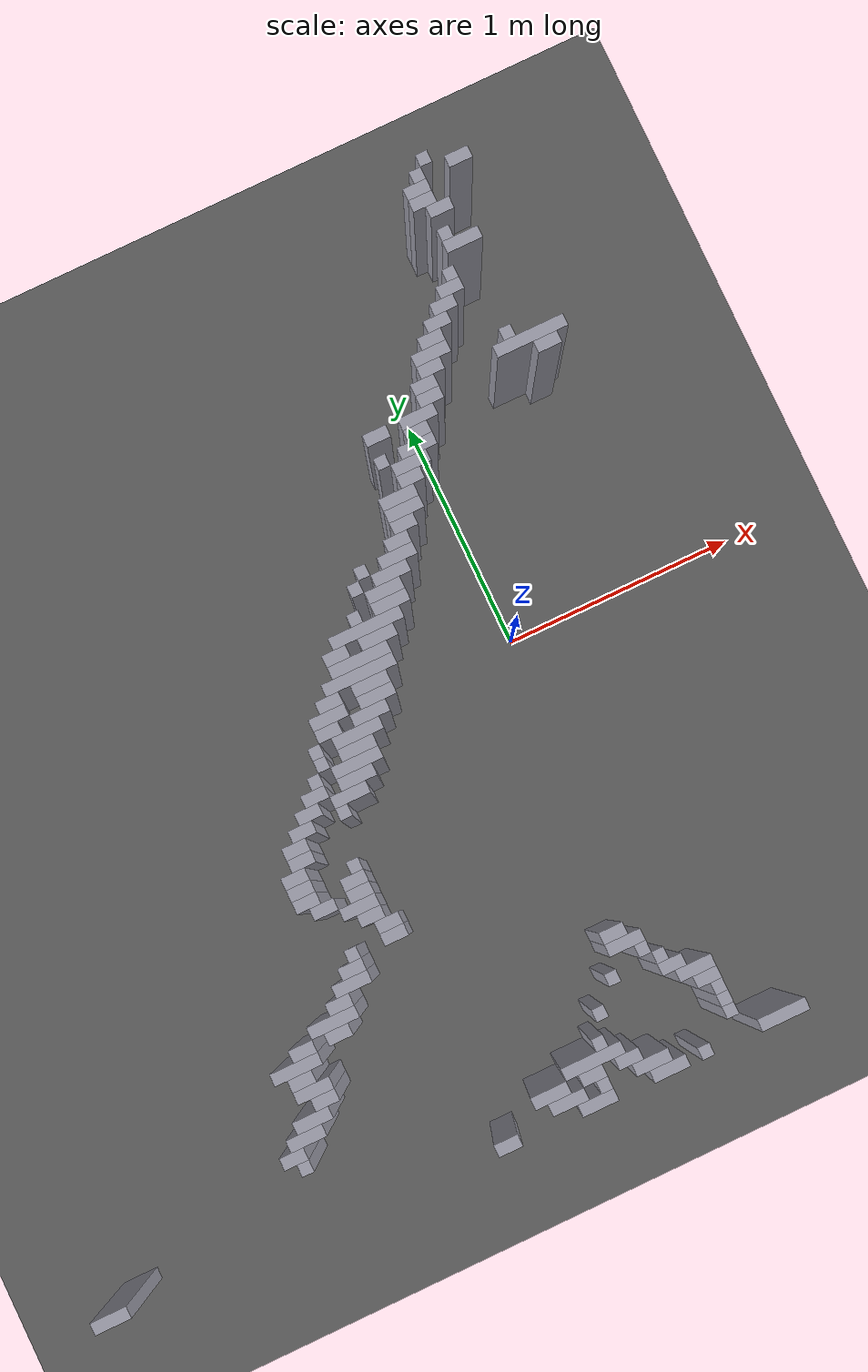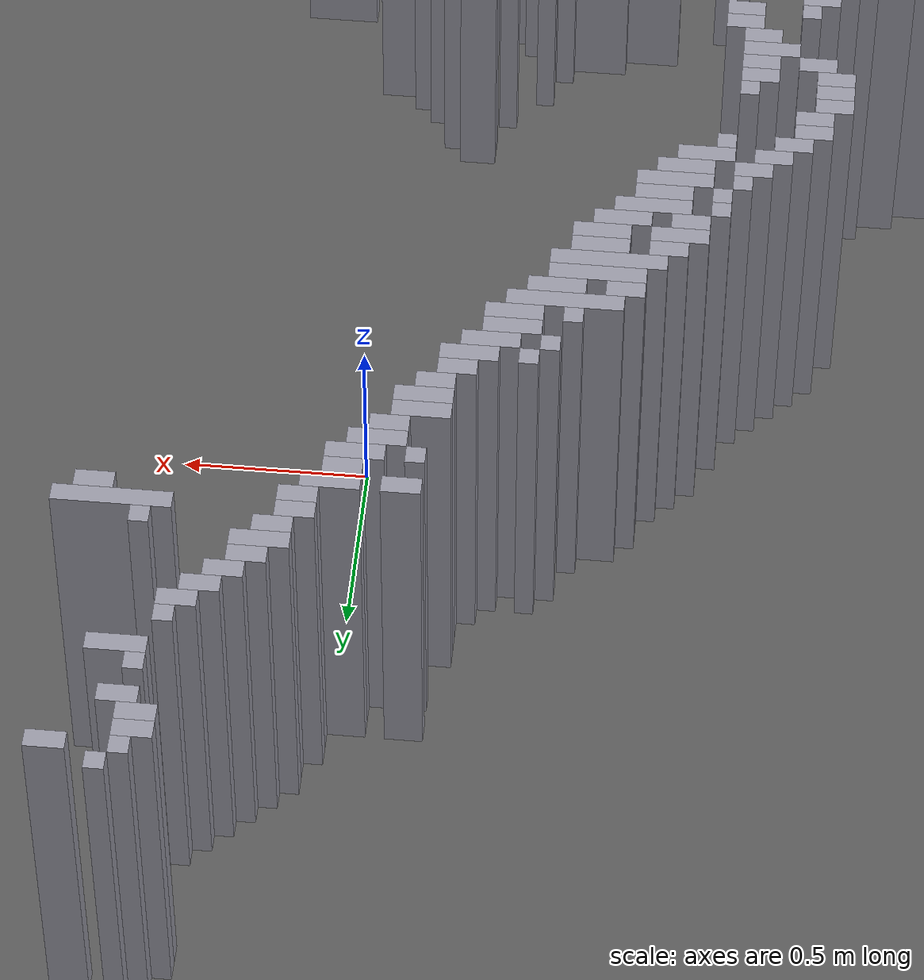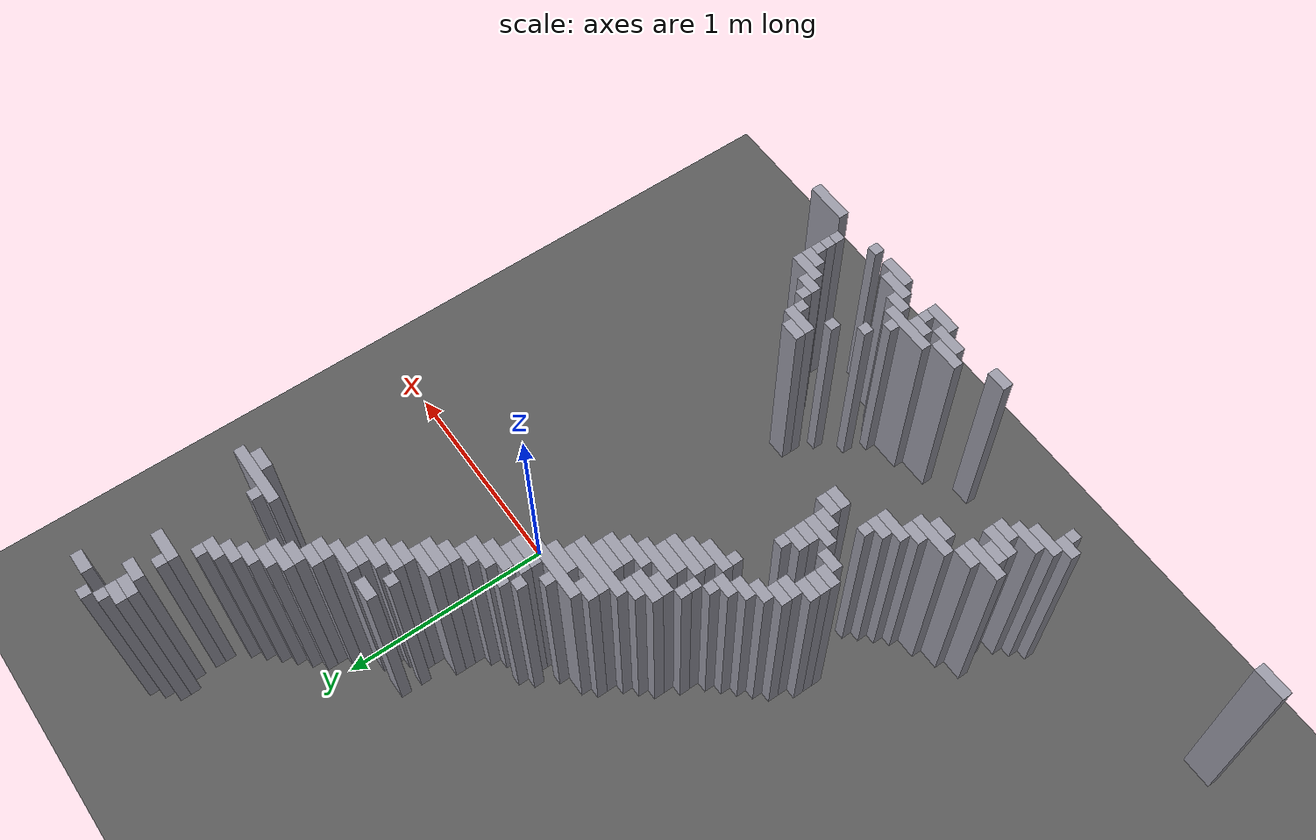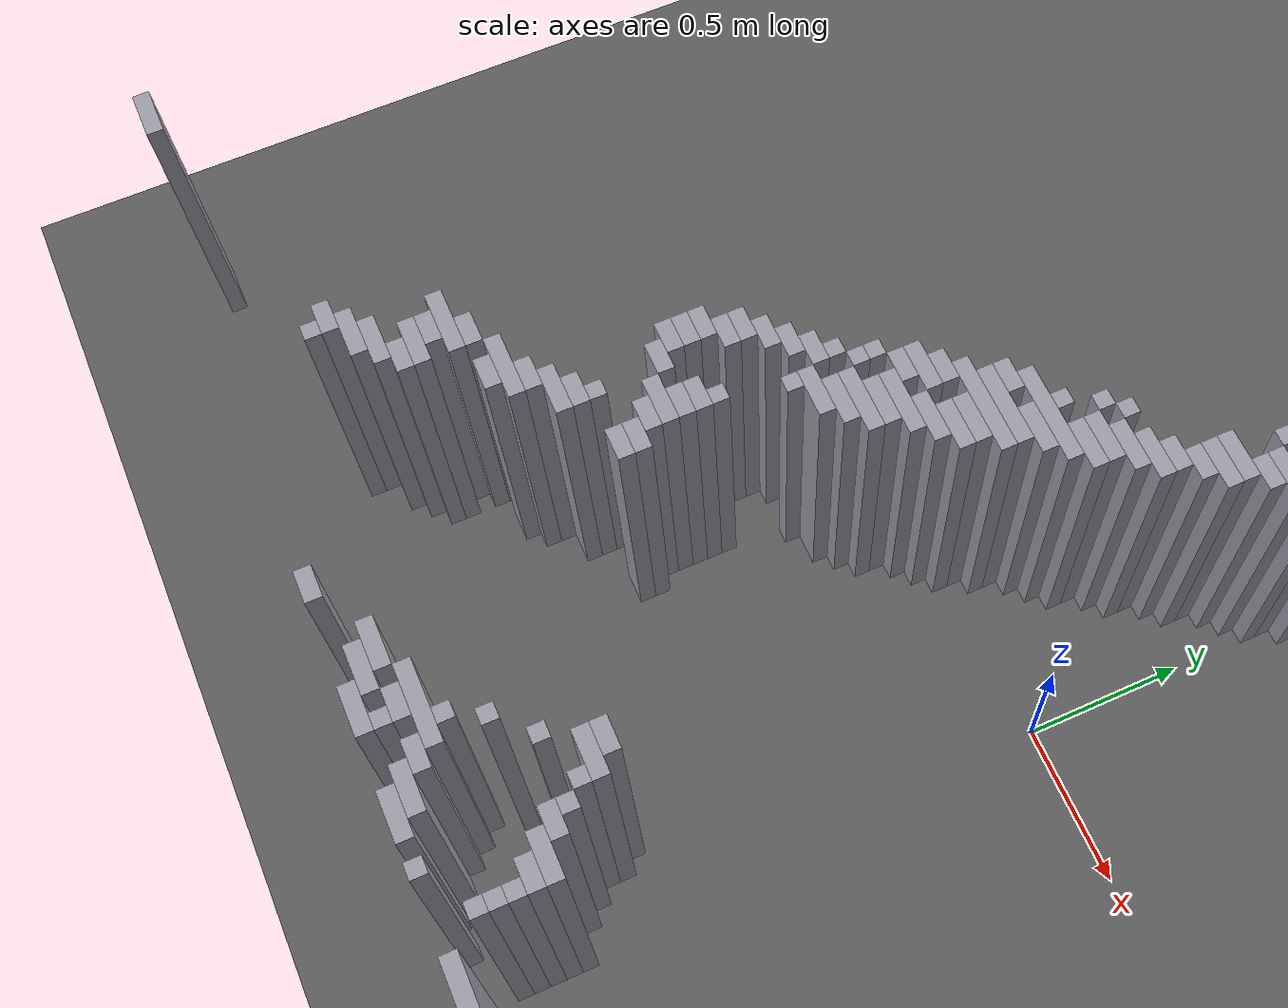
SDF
<sdf version="1.8">
 <world name="dimi">
  <model name="ground">
   <static>true</static>
   <link name="ground_link">
    <collision name="c"><geometry><plane><normal>0 0 1</normal><size>60 60</size></plane></geometry></collision>
    <visual name="v">
     <geometry><plane><normal>0 0 1</normal><size>60 60</size></plane></geometry>
     <material><ambient>0.3 0.3 0.3 1</ambient><diffuse>0.35 0.35 0.35 1</diffuse></material>
    </visual>
   </link>
  </model>
  <model name="walls">
   <static>true</static>
   <link name="wall_7">
    <pose>0.4350 1.7550 0.5000 0 0 0</pose>
    <collision name="c"><geometry><box><size>0.0500 0.0500 1.0000</size></box></geometry></collision>
    <visual name="v">
     <geometry><box><size>0.0500 0.0500 1.0000</size></box></geometry>
     <material><ambient>0.5 0.5 0.55 1</ambient><diffuse>0.6 0.6 0.65 1</diffuse></material>
    </visual>
   </link>
   <link name="wall_9">
    <pose>0.3850 1.7050 0.5000 0 0 0</pose>
    <collision name="c"><geometry><box><size>0.0500 0.0500 1.0000</size></box></geometry></collision>
    <visual name="v">
     <geometry><box><size>0.0500 0.0500 1.0000</size></box></geometry>
     <material><ambient>0.5 0.5 0.55 1</ambient><diffuse>0.6 0.6 0.65 1</diffuse></material>
    </visual>
   </link>
   <link name="wall_10">
    <pose>0.5600 1.7050 0.5000 0 0 0</pose>
    <collision name="c"><geometry><box><size>0.1000 0.0500 1.0000</size></box></geometry></collision>
    <visual name="v">
     <geometry><box><size>0.1000 0.0500 1.0000</size></box></geometry>
     <material><ambient>0.5 0.5 0.55 1</ambient><diffuse>0.6 0.6 0.65 1</diffuse></material>
    </visual>
   </link>
   <link name="wall_13">
    <pose>0.3600 1.6550 0.5000 0 0 0</pose>
    <collision name="c"><geometry><box><size>0.1000 0.0500 1.0000</size></box></geometry></collision>
    <visual name="v">
     <geometry><box><size>0.1000 0.0500 1.0000</size></box></geometry>
     <material><ambient>0.5 0.5 0.55 1</ambient><diffuse>0.6 0.6 0.65 1</diffuse></material>
    </visual>
   </link>
   <link name="wall_17">
    <pose>0.3600 1.6050 0.5000 0 0 0</pose>
    <collision name="c"><geometry><box><size>0.1000 0.0500 1.0000</size></box></geometry></collision>
    <visual name="v">
     <geometry><box><size>0.1000 0.0500 1.0000</size></box></geometry>
     <material><ambient>0.5 0.5 0.55 1</ambient><diffuse>0.6 0.6 0.65 1</diffuse></material>
    </visual>
   </link>
   <link name="wall_21">
    <pose>0.4100 1.5550 0.5000 0 0 0</pose>
    <collision name="c"><geometry><box><size>0.1000 0.0500 1.0000</size></box></geometry></collision>
    <visual name="v">
     <geometry><box><size>0.1000 0.0500 1.0000</size></box></geometry>
     <material><ambient>0.5 0.5 0.55 1</ambient><diffuse>0.6 0.6 0.65 1</diffuse></material>
    </visual>
   </link>
   <link name="wall_27">
    <pose>0.3850 1.4550 0.5000 0 0 0</pose>
    <collision name="c"><geometry><box><size>0.0500 0.0500 1.0000</size></box></geometry></collision>
    <visual name="v">
     <geometry><box><size>0.0500 0.0500 1.0000</size></box></geometry>
     <material><ambient>0.5 0.5 0.55 1</ambient><diffuse>0.6 0.6 0.65 1</diffuse></material>
    </visual>
   </link>
   <link name="wall_30">
    <pose>0.4350 1.4050 0.5000 0 0 0</pose>
    <collision name="c"><geometry><box><size>0.1500 0.0500 1.0000</size></box></geometry></collision>
    <visual name="v">
     <geometry><box><size>0.1500 0.0500 1.0000</size></box></geometry>
     <material><ambient>0.5 0.5 0.55 1</ambient><diffuse>0.6 0.6 0.65 1</diffuse></material>
    </visual>
   </link>
   <link name="wall_36">
    <pose>0.3350 1.3050 0.5000 0 0 0</pose>
    <collision name="c"><geometry><box><size>0.0500 0.0500 1.0000</size></box></geometry></collision>
    <visual name="v">
     <geometry><box><size>0.0500 0.0500 1.0000</size></box></geometry>
     <material><ambient>0.5 0.5 0.55 1</ambient><diffuse>0.6 0.6 0.65 1</diffuse></material>
    </visual>
   </link>
   <link name="wall_39">
    <pose>0.3100 1.2550 0.5000 0 0 0</pose>
    <collision name="c"><geometry><box><size>0.1000 0.0500 1.0000</size></box></geometry></collision>
    <visual name="v">
     <geometry><box><size>0.1000 0.0500 1.0000</size></box></geometry>
     <material><ambient>0.5 0.5 0.55 1</ambient><diffuse>0.6 0.6 0.65 1</diffuse></material>
    </visual>
   </link>
   <link name="wall_43">
    <pose>0.2600 1.2050 0.5000 0 0 0</pose>
    <collision name="c"><geometry><box><size>0.1000 0.0500 1.0000</size></box></geometry></collision>
    <visual name="v">
     <geometry><box><size>0.1000 0.0500 1.0000</size></box></geometry>
     <material><ambient>0.5 0.5 0.55 1</ambient><diffuse>0.6 0.6 0.65 1</diffuse></material>
    </visual>
   </link>
   <link name="wall_47">
    <pose>0.2100 1.1550 0.5000 0 0 0</pose>
    <collision name="c"><geometry><box><size>0.1000 0.0500 1.0000</size></box></geometry></collision>
    <visual name="v">
     <geometry><box><size>0.1000 0.0500 1.0000</size></box></geometry>
     <material><ambient>0.5 0.5 0.55 1</ambient><diffuse>0.6 0.6 0.65 1</diffuse></material>
    </visual>
   </link>
   <link name="wall_53">
    <pose>0.1600 1.1050 0.5000 0 0 0</pose>
    <collision name="c"><geometry><box><size>0.1000 0.0500 1.0000</size></box></geometry></collision>
    <visual name="v">
     <geometry><box><size>0.1000 0.0500 1.0000</size></box></geometry>
     <material><ambient>0.5 0.5 0.55 1</ambient><diffuse>0.6 0.6 0.65 1</diffuse></material>
    </visual>
   </link>
   <link name="wall_58">
    <pose>0.1350 1.0550 0.5000 0 0 0</pose>
    <collision name="c"><geometry><box><size>0.1500 0.0500 1.0000</size></box></geometry></collision>
    <visual name="v">
     <geometry><box><size>0.1500 0.0500 1.0000</size></box></geometry>
     <material><ambient>0.5 0.5 0.55 1</ambient><diffuse>0.6 0.6 0.65 1</diffuse></material>
    </visual>
   </link>
   <link name="wall_62">
    <pose>0.1100 1.0050 0.5000 0 0 0</pose>
    <collision name="c"><geometry><box><size>0.1000 0.0500 1.0000</size></box></geometry></collision>
    <visual name="v">
     <geometry><box><size>0.1000 0.0500 1.0000</size></box></geometry>
     <material><ambient>0.5 0.5 0.55 1</ambient><diffuse>0.6 0.6 0.65 1</diffuse></material>
    </visual>
   </link>
   <link name="wall_63">
    <pose>0.4350 1.0050 0.5000 0 0 0</pose>
    <collision name="c"><geometry><box><size>0.0500 0.0500 1.0000</size></box></geometry></collision>
    <visual name="v">
     <geometry><box><size>0.0500 0.0500 1.0000</size></box></geometry>
     <material><ambient>0.5 0.5 0.55 1</ambient><diffuse>0.6 0.6 0.65 1</diffuse></material>
    </visual>
   </link>
   <link name="wall_67">
    <pose>0.0600 0.9550 0.5000 0 0 0</pose>
    <collision name="c"><geometry><box><size>0.1000 0.0500 1.0000</size></box></geometry></collision>
    <visual name="v">
     <geometry><box><size>0.1000 0.0500 1.0000</size></box></geometry>
     <material><ambient>0.5 0.5 0.55 1</ambient><diffuse>0.6 0.6 0.65 1</diffuse></material>
    </visual>
   </link>
   <link name="wall_68">
    <pose>0.5100 0.9550 0.5000 0 0 0</pose>
    <collision name="c"><geometry><box><size>0.3000 0.0500 1.0000</size></box></geometry></collision>
    <visual name="v">
     <geometry><box><size>0.3000 0.0500 1.0000</size></box></geometry>
     <material><ambient>0.5 0.5 0.55 1</ambient><diffuse>0.6 0.6 0.65 1</diffuse></material>
    </visual>
   </link>
   <link name="wall_71">
    <pose>0.0600 0.9050 0.5000 0 0 0</pose>
    <collision name="c"><geometry><box><size>0.1000 0.0500 1.0000</size></box></geometry></collision>
    <visual name="v">
     <geometry><box><size>0.1000 0.0500 1.0000</size></box></geometry>
     <material><ambient>0.5 0.5 0.55 1</ambient><diffuse>0.6 0.6 0.65 1</diffuse></material>
    </visual>
   </link>
   <link name="wall_72">
    <pose>0.5600 0.9050 0.5000 0 0 0</pose>
    <collision name="c"><geometry><box><size>0.1000 0.0500 1.0000</size></box></geometry></collision>
    <visual name="v">
     <geometry><box><size>0.1000 0.0500 1.0000</size></box></geometry>
     <material><ambient>0.5 0.5 0.55 1</ambient><diffuse>0.6 0.6 0.65 1</diffuse></material>
    </visual>
   </link>
   <link name="wall_75">
    <pose>-0.1900 0.8550 0.5000 0 0 0</pose>
    <collision name="c"><geometry><box><size>0.1000 0.0500 1.0000</size></box></geometry></collision>
    <visual name="v">
     <geometry><box><size>0.1000 0.0500 1.0000</size></box></geometry>
     <material><ambient>0.5 0.5 0.55 1</ambient><diffuse>0.6 0.6 0.65 1</diffuse></material>
    </visual>
   </link>
   <link name="wall_76">
    <pose>-0.0150 0.8550 0.5000 0 0 0</pose>
    <collision name="c"><geometry><box><size>0.1500 0.0500 1.0000</size></box></geometry></collision>
    <visual name="v">
     <geometry><box><size>0.1500 0.0500 1.0000</size></box></geometry>
     <material><ambient>0.5 0.5 0.55 1</ambient><diffuse>0.6 0.6 0.65 1</diffuse></material>
    </visual>
   </link>
   <link name="wall_80">
    <pose>-0.0400 0.8050 0.5000 0 0 0</pose>
    <collision name="c"><geometry><box><size>0.1000 0.0500 1.0000</size></box></geometry></collision>
    <visual name="v">
     <geometry><box><size>0.1000 0.0500 1.0000</size></box></geometry>
     <material><ambient>0.5 0.5 0.55 1</ambient><diffuse>0.6 0.6 0.65 1</diffuse></material>
    </visual>
   </link>
   <link name="wall_83">
    <pose>-0.2150 0.7550 0.5000 0 0 0</pose>
    <collision name="c"><geometry><box><size>0.0500 0.0500 1.0000</size></box></geometry></collision>
    <visual name="v">
     <geometry><box><size>0.0500 0.0500 1.0000</size></box></geometry>
     <material><ambient>0.5 0.5 0.55 1</ambient><diffuse>0.6 0.6 0.65 1</diffuse></material>
    </visual>
   </link>
   <link name="wall_84">
    <pose>-0.0650 0.7550 0.5000 0 0 0</pose>
    <collision name="c"><geometry><box><size>0.1500 0.0500 1.0000</size></box></geometry></collision>
    <visual name="v">
     <geometry><box><size>0.1500 0.0500 1.0000</size></box></geometry>
     <material><ambient>0.5 0.5 0.55 1</ambient><diffuse>0.6 0.6 0.65 1</diffuse></material>
    </visual>
   </link>
   <link name="wall_87">
    <pose>-0.1150 0.7050 0.5000 0 0 0</pose>
    <collision name="c"><geometry><box><size>0.1500 0.0500 1.0000</size></box></geometry></collision>
    <visual name="v">
     <geometry><box><size>0.1500 0.0500 1.0000</size></box></geometry>
     <material><ambient>0.5 0.5 0.55 1</ambient><diffuse>0.6 0.6 0.65 1</diffuse></material>
    </visual>
   </link>
   <link name="wall_91">
    <pose>-0.1400 0.6550 0.5000 0 0 0</pose>
    <collision name="c"><geometry><box><size>0.1000 0.0500 1.0000</size></box></geometry></collision>
    <visual name="v">
     <geometry><box><size>0.1000 0.0500 1.0000</size></box></geometry>
     <material><ambient>0.5 0.5 0.55 1</ambient><diffuse>0.6 0.6 0.65 1</diffuse></material>
    </visual>
   </link>
   <link name="wall_95">
    <pose>-0.2150 0.6050 0.5000 0 0 0</pose>
    <collision name="c"><geometry><box><size>0.1500 0.0500 1.0000</size></box></geometry></collision>
    <visual name="v">
     <geometry><box><size>0.1500 0.0500 1.0000</size></box></geometry>
     <material><ambient>0.5 0.5 0.55 1</ambient><diffuse>0.6 0.6 0.65 1</diffuse></material>
    </visual>
   </link>
   <link name="wall_98">
    <pose>-0.2150 0.5550 0.5000 0 0 0</pose>
    <collision name="c"><geometry><box><size>0.1500 0.0500 1.0000</size></box></geometry></collision>
    <visual name="v">
     <geometry><box><size>0.1500 0.0500 1.0000</size></box></geometry>
     <material><ambient>0.5 0.5 0.55 1</ambient><diffuse>0.6 0.6 0.65 1</diffuse></material>
    </visual>
   </link>
   <link name="wall_100">
    <pose>-0.2400 0.5050 0.5000 0 0 0</pose>
    <collision name="c"><geometry><box><size>0.1000 0.0500 1.0000</size></box></geometry></collision>
    <visual name="v">
     <geometry><box><size>0.1000 0.0500 1.0000</size></box></geometry>
     <material><ambient>0.5 0.5 0.55 1</ambient><diffuse>0.6 0.6 0.65 1</diffuse></material>
    </visual>
   </link>
   <link name="wall_102">
    <pose>-0.2900 0.4550 0.5000 0 0 0</pose>
    <collision name="c"><geometry><box><size>0.1000 0.0500 1.0000</size></box></geometry></collision>
    <visual name="v">
     <geometry><box><size>0.1000 0.0500 1.0000</size></box></geometry>
     <material><ambient>0.5 0.5 0.55 1</ambient><diffuse>0.6 0.6 0.65 1</diffuse></material>
    </visual>
   </link>
   <link name="wall_104">
    <pose>-0.4650 0.4050 0.5000 0 0 0</pose>
    <collision name="c"><geometry><box><size>0.0500 0.0500 1.0000</size></box></geometry></collision>
    <visual name="v">
     <geometry><box><size>0.0500 0.0500 1.0000</size></box></geometry>
     <material><ambient>0.5 0.5 0.55 1</ambient><diffuse>0.6 0.6 0.65 1</diffuse></material>
    </visual>
   </link>
   <link name="wall_105">
    <pose>-0.3150 0.4050 0.5000 0 0 0</pose>
    <collision name="c"><geometry><box><size>0.1500 0.0500 1.0000</size></box></geometry></collision>
    <visual name="v">
     <geometry><box><size>0.1500 0.0500 1.0000</size></box></geometry>
     <material><ambient>0.5 0.5 0.55 1</ambient><diffuse>0.6 0.6 0.65 1</diffuse></material>
    </visual>
   </link>
   <link name="wall_107">
    <pose>-0.5150 0.3550 0.5000 0 0 0</pose>
    <collision name="c"><geometry><box><size>0.0500 0.0500 1.0000</size></box></geometry></collision>
    <visual name="v">
     <geometry><box><size>0.0500 0.0500 1.0000</size></box></geometry>
     <material><ambient>0.5 0.5 0.55 1</ambient><diffuse>0.6 0.6 0.65 1</diffuse></material>
    </visual>
   </link>
   <link name="wall_108">
    <pose>-0.3650 0.3550 0.5000 0 0 0</pose>
    <collision name="c"><geometry><box><size>0.1500 0.0500 1.0000</size></box></geometry></collision>
    <visual name="v">
     <geometry><box><size>0.1500 0.0500 1.0000</size></box></geometry>
     <material><ambient>0.5 0.5 0.55 1</ambient><diffuse>0.6 0.6 0.65 1</diffuse></material>
    </visual>
   </link>
   <link name="wall_111">
    <pose>-0.4150 0.3050 0.5000 0 0 0</pose>
    <collision name="c"><geometry><box><size>0.1500 0.0500 1.0000</size></box></geometry></collision>
    <visual name="v">
     <geometry><box><size>0.1500 0.0500 1.0000</size></box></geometry>
     <material><ambient>0.5 0.5 0.55 1</ambient><diffuse>0.6 0.6 0.65 1</diffuse></material>
    </visual>
   </link>
   <link name="wall_113">
    <pose>-0.5650 0.2550 0.5000 0 0 0</pose>
    <collision name="c"><geometry><box><size>0.0500 0.0500 1.0000</size></box></geometry></collision>
    <visual name="v">
     <geometry><box><size>0.0500 0.0500 1.0000</size></box></geometry>
     <material><ambient>0.5 0.5 0.55 1</ambient><diffuse>0.6 0.6 0.65 1</diffuse></material>
    </visual>
   </link>
   <link name="wall_114">
    <pose>-0.4150 0.2550 0.5000 0 0 0</pose>
    <collision name="c"><geometry><box><size>0.1500 0.0500 1.0000</size></box></geometry></collision>
    <visual name="v">
     <geometry><box><size>0.1500 0.0500 1.0000</size></box></geometry>
     <material><ambient>0.5 0.5 0.55 1</ambient><diffuse>0.6 0.6 0.65 1</diffuse></material>
    </visual>
   </link>
   <link name="wall_116">
    <pose>-0.5400 0.2050 0.5000 0 0 0</pose>
    <collision name="c"><geometry><box><size>0.3000 0.0500 1.0000</size></box></geometry></collision>
    <visual name="v">
     <geometry><box><size>0.3000 0.0500 1.0000</size></box></geometry>
     <material><ambient>0.5 0.5 0.55 1</ambient><diffuse>0.6 0.6 0.65 1</diffuse></material>
    </visual>
   </link>
   <link name="wall_118">
    <pose>-0.6900 0.1550 0.5000 0 0 0</pose>
    <collision name="c"><geometry><box><size>0.1000 0.0500 1.0000</size></box></geometry></collision>
    <visual name="v">
     <geometry><box><size>0.1000 0.0500 1.0000</size></box></geometry>
     <material><ambient>0.5 0.5 0.55 1</ambient><diffuse>0.6 0.6 0.65 1</diffuse></material>
    </visual>
   </link>
   <link name="wall_119">
    <pose>-0.5150 0.1550 0.5000 0 0 0</pose>
    <collision name="c"><geometry><box><size>0.1500 0.0500 1.0000</size></box></geometry></collision>
    <visual name="v">
     <geometry><box><size>0.1500 0.0500 1.0000</size></box></geometry>
     <material><ambient>0.5 0.5 0.55 1</ambient><diffuse>0.6 0.6 0.65 1</diffuse></material>
    </visual>
   </link>
   <link name="wall_121">
    <pose>-0.6150 0.1050 0.5000 0 0 0</pose>
    <collision name="c"><geometry><box><size>0.2500 0.0500 1.0000</size></box></geometry></collision>
    <visual name="v">
     <geometry><box><size>0.2500 0.0500 1.0000</size></box></geometry>
     <material><ambient>0.5 0.5 0.55 1</ambient><diffuse>0.6 0.6 0.65 1</diffuse></material>
    </visual>
   </link>
   <link name="wall_123">
    <pose>-0.6400 0.0550 0.5000 0 0 0</pose>
    <collision name="c"><geometry><box><size>0.3000 0.0500 1.0000</size></box></geometry></collision>
    <visual name="v">
     <geometry><box><size>0.3000 0.0500 1.0000</size></box></geometry>
     <material><ambient>0.5 0.5 0.55 1</ambient><diffuse>0.6 0.6 0.65 1</diffuse></material>
    </visual>
   </link>
   <link name="wall_125">
    <pose>-0.7900 0.0050 0.5000 0 0 0</pose>
    <collision name="c"><geometry><box><size>0.1000 0.0500 1.0000</size></box></geometry></collision>
    <visual name="v">
     <geometry><box><size>0.1000 0.0500 1.0000</size></box></geometry>
     <material><ambient>0.5 0.5 0.55 1</ambient><diffuse>0.6 0.6 0.65 1</diffuse></material>
    </visual>
   </link>
   <link name="wall_126">
    <pose>-0.6150 0.0050 0.5000 0 0 0</pose>
    <collision name="c"><geometry><box><size>0.1500 0.0500 1.0000</size></box></geometry></collision>
    <visual name="v">
     <geometry><box><size>0.1500 0.0500 1.0000</size></box></geometry>
     <material><ambient>0.5 0.5 0.55 1</ambient><diffuse>0.6 0.6 0.65 1</diffuse></material>
    </visual>
   </link>
   <link name="wall_129">
    <pose>-0.8150 -0.0450 0.5000 0 0 0</pose>
    <collision name="c"><geometry><box><size>0.1500 0.0500 1.0000</size></box></geometry></collision>
    <visual name="v">
     <geometry><box><size>0.1500 0.0500 1.0000</size></box></geometry>
     <material><ambient>0.5 0.5 0.55 1</ambient><diffuse>0.6 0.6 0.65 1</diffuse></material>
    </visual>
   </link>
   <link name="wall_130">
    <pose>-0.6150 -0.0450 0.5000 0 0 0</pose>
    <collision name="c"><geometry><box><size>0.1500 0.0500 1.0000</size></box></geometry></collision>
    <visual name="v">
     <geometry><box><size>0.1500 0.0500 1.0000</size></box></geometry>
     <material><ambient>0.5 0.5 0.55 1</ambient><diffuse>0.6 0.6 0.65 1</diffuse></material>
    </visual>
   </link>
   <link name="wall_135">
    <pose>-0.8400 -0.0950 0.5000 0 0 0</pose>
    <collision name="c"><geometry><box><size>0.1000 0.0500 1.0000</size></box></geometry></collision>
    <visual name="v">
     <geometry><box><size>0.1000 0.0500 1.0000</size></box></geometry>
     <material><ambient>0.5 0.5 0.55 1</ambient><diffuse>0.6 0.6 0.65 1</diffuse></material>
    </visual>
   </link>
   <link name="wall_136">
    <pose>-0.6650 -0.0950 0.5000 0 0 0</pose>
    <collision name="c"><geometry><box><size>0.1500 0.0500 1.0000</size></box></geometry></collision>
    <visual name="v">
     <geometry><box><size>0.1500 0.0500 1.0000</size></box></geometry>
     <material><ambient>0.5 0.5 0.55 1</ambient><diffuse>0.6 0.6 0.65 1</diffuse></material>
    </visual>
   </link>
   <link name="wall_139">
    <pose>-0.9150 -0.1450 0.5000 0 0 0</pose>
    <collision name="c"><geometry><box><size>0.0500 0.0500 1.0000</size></box></geometry></collision>
    <visual name="v">
     <geometry><box><size>0.0500 0.0500 1.0000</size></box></geometry>
     <material><ambient>0.5 0.5 0.55 1</ambient><diffuse>0.6 0.6 0.65 1</diffuse></material>
    </visual>
   </link>
   <link name="wall_140">
    <pose>-0.7400 -0.1450 0.5000 0 0 0</pose>
    <collision name="c"><geometry><box><size>0.2000 0.0500 1.0000</size></box></geometry></collision>
    <visual name="v">
     <geometry><box><size>0.2000 0.0500 1.0000</size></box></geometry>
     <material><ambient>0.5 0.5 0.55 1</ambient><diffuse>0.6 0.6 0.65 1</diffuse></material>
    </visual>
   </link>
   <link name="wall_143">
    <pose>-0.9150 -0.1950 0.5000 0 0 0</pose>
    <collision name="c"><geometry><box><size>0.0500 0.0500 1.0000</size></box></geometry></collision>
    <visual name="v">
     <geometry><box><size>0.0500 0.0500 1.0000</size></box></geometry>
     <material><ambient>0.5 0.5 0.55 1</ambient><diffuse>0.6 0.6 0.65 1</diffuse></material>
    </visual>
   </link>
   <link name="wall_144">
    <pose>-0.7650 -0.1950 0.5000 0 0 0</pose>
    <collision name="c"><geometry><box><size>0.1500 0.0500 1.0000</size></box></geometry></collision>
    <visual name="v">
     <geometry><box><size>0.1500 0.0500 1.0000</size></box></geometry>
     <material><ambient>0.5 0.5 0.55 1</ambient><diffuse>0.6 0.6 0.65 1</diffuse></material>
    </visual>
   </link>
   <link name="wall_148">
    <pose>-0.9650 -0.2450 0.5000 0 0 0</pose>
    <collision name="c"><geometry><box><size>0.0500 0.0500 1.0000</size></box></geometry></collision>
    <visual name="v">
     <geometry><box><size>0.0500 0.0500 1.0000</size></box></geometry>
     <material><ambient>0.5 0.5 0.55 1</ambient><diffuse>0.6 0.6 0.65 1</diffuse></material>
    </visual>
   </link>
   <link name="wall_149">
    <pose>-0.7900 -0.2450 0.5000 0 0 0</pose>
    <collision name="c"><geometry><box><size>0.2000 0.0500 1.0000</size></box></geometry></collision>
    <visual name="v">
     <geometry><box><size>0.2000 0.0500 1.0000</size></box></geometry>
     <material><ambient>0.5 0.5 0.55 1</ambient><diffuse>0.6 0.6 0.65 1</diffuse></material>
    </visual>
   </link>
   <link name="wall_154">
    <pose>-0.9900 -0.2950 0.5000 0 0 0</pose>
    <collision name="c"><geometry><box><size>0.1000 0.0500 1.0000</size></box></geometry></collision>
    <visual name="v">
     <geometry><box><size>0.1000 0.0500 1.0000</size></box></geometry>
     <material><ambient>0.5 0.5 0.55 1</ambient><diffuse>0.6 0.6 0.65 1</diffuse></material>
    </visual>
   </link>
   <link name="wall_155">
    <pose>-0.8150 -0.2950 0.5000 0 0 0</pose>
    <collision name="c"><geometry><box><size>0.1500 0.0500 1.0000</size></box></geometry></collision>
    <visual name="v">
     <geometry><box><size>0.1500 0.0500 1.0000</size></box></geometry>
     <material><ambient>0.5 0.5 0.55 1</ambient><diffuse>0.6 0.6 0.65 1</diffuse></material>
    </visual>
   </link>
   <link name="wall_159">
    <pose>-1.0400 -0.3450 0.5000 0 0 0</pose>
    <collision name="c"><geometry><box><size>0.1000 0.0500 1.0000</size></box></geometry></collision>
    <visual name="v">
     <geometry><box><size>0.1000 0.0500 1.0000</size></box></geometry>
     <material><ambient>0.5 0.5 0.55 1</ambient><diffuse>0.6 0.6 0.65 1</diffuse></material>
    </visual>
   </link>
   <link name="wall_160">
    <pose>-0.8650 -0.3450 0.5000 0 0 0</pose>
    <collision name="c"><geometry><box><size>0.1500 0.0500 1.0000</size></box></geometry></collision>
    <visual name="v">
     <geometry><box><size>0.1500 0.0500 1.0000</size></box></geometry>
     <material><ambient>0.5 0.5 0.55 1</ambient><diffuse>0.6 0.6 0.65 1</diffuse></material>
    </visual>
   </link>
   <link name="wall_163">
    <pose>-1.0900 -0.3950 0.5000 0 0 0</pose>
    <collision name="c"><geometry><box><size>0.1000 0.0500 1.0000</size></box></geometry></collision>
    <visual name="v">
     <geometry><box><size>0.1000 0.0500 1.0000</size></box></geometry>
     <material><ambient>0.5 0.5 0.55 1</ambient><diffuse>0.6 0.6 0.65 1</diffuse></material>
    </visual>
   </link>
   <link name="wall_164">
    <pose>-0.9150 -0.3950 0.5000 0 0 0</pose>
    <collision name="c"><geometry><box><size>0.0500 0.0500 1.0000</size></box></geometry></collision>
    <visual name="v">
     <geometry><box><size>0.0500 0.0500 1.0000</size></box></geometry>
     <material><ambient>0.5 0.5 0.55 1</ambient><diffuse>0.6 0.6 0.65 1</diffuse></material>
    </visual>
   </link>
   <link name="wall_167">
    <pose>-1.1400 -0.4450 0.5000 0 0 0</pose>
    <collision name="c"><geometry><box><size>0.1000 0.0500 1.0000</size></box></geometry></collision>
    <visual name="v">
     <geometry><box><size>0.1000 0.0500 1.0000</size></box></geometry>
     <material><ambient>0.5 0.5 0.55 1</ambient><diffuse>0.6 0.6 0.65 1</diffuse></material>
    </visual>
   </link>
   <link name="wall_171">
    <pose>-1.1400 -0.4950 0.5000 0 0 0</pose>
    <collision name="c"><geometry><box><size>0.1000 0.0500 1.0000</size></box></geometry></collision>
    <visual name="v">
     <geometry><box><size>0.1000 0.0500 1.0000</size></box></geometry>
     <material><ambient>0.5 0.5 0.55 1</ambient><diffuse>0.6 0.6 0.65 1</diffuse></material>
    </visual>
   </link>
   <link name="wall_175">
    <pose>-1.1900 -0.5450 0.5000 0 0 0</pose>
    <collision name="c"><geometry><box><size>0.1000 0.0500 1.0000</size></box></geometry></collision>
    <visual name="v">
     <geometry><box><size>0.1000 0.0500 1.0000</size></box></geometry>
     <material><ambient>0.5 0.5 0.55 1</ambient><diffuse>0.6 0.6 0.65 1</diffuse></material>
    </visual>
   </link>
   <link name="wall_178">
    <pose>-1.1900 -0.5950 0.5000 0 0 0</pose>
    <collision name="c"><geometry><box><size>0.1000 0.0500 1.0000</size></box></geometry></collision>
    <visual name="v">
     <geometry><box><size>0.1000 0.0500 1.0000</size></box></geometry>
     <material><ambient>0.5 0.5 0.55 1</ambient><diffuse>0.6 0.6 0.65 1</diffuse></material>
    </visual>
   </link>
   <link name="wall_179">
    <pose>-0.9650 -0.5950 0.5000 0 0 0</pose>
    <collision name="c"><geometry><box><size>0.0500 0.0500 1.0000</size></box></geometry></collision>
    <visual name="v">
     <geometry><box><size>0.0500 0.0500 1.0000</size></box></geometry>
     <material><ambient>0.5 0.5 0.55 1</ambient><diffuse>0.6 0.6 0.65 1</diffuse></material>
    </visual>
   </link>
   <link name="wall_182">
    <pose>-1.1900 -0.6450 0.5000 0 0 0</pose>
    <collision name="c"><geometry><box><size>0.1000 0.0500 1.0000</size></box></geometry></collision>
    <visual name="v">
     <geometry><box><size>0.1000 0.0500 1.0000</size></box></geometry>
     <material><ambient>0.5 0.5 0.55 1</ambient><diffuse>0.6 0.6 0.65 1</diffuse></material>
    </visual>
   </link>
   <link name="wall_183">
    <pose>-0.9900 -0.6450 0.5000 0 0 0</pose>
    <collision name="c"><geometry><box><size>0.1000 0.0500 1.0000</size></box></geometry></collision>
    <visual name="v">
     <geometry><box><size>0.1000 0.0500 1.0000</size></box></geometry>
     <material><ambient>0.5 0.5 0.55 1</ambient><diffuse>0.6 0.6 0.65 1</diffuse></material>
    </visual>
   </link>
   <link name="wall_187">
    <pose>-1.1400 -0.6950 0.5000 0 0 0</pose>
    <collision name="c"><geometry><box><size>0.1000 0.0500 1.0000</size></box></geometry></collision>
    <visual name="v">
     <geometry><box><size>0.1000 0.0500 1.0000</size></box></geometry>
     <material><ambient>0.5 0.5 0.55 1</ambient><diffuse>0.6 0.6 0.65 1</diffuse></material>
    </visual>
   </link>
   <link name="wall_188">
    <pose>-0.9900 -0.6950 0.5000 0 0 0</pose>
    <collision name="c"><geometry><box><size>0.1000 0.0500 1.0000</size></box></geometry></collision>
    <visual name="v">
     <geometry><box><size>0.1000 0.0500 1.0000</size></box></geometry>
     <material><ambient>0.5 0.5 0.55 1</ambient><diffuse>0.6 0.6 0.65 1</diffuse></material>
    </visual>
   </link>
   <link name="wall_192">
    <pose>-1.0150 -0.7450 0.5000 0 0 0</pose>
    <collision name="c"><geometry><box><size>0.1500 0.0500 1.0000</size></box></geometry></collision>
    <visual name="v">
     <geometry><box><size>0.1500 0.0500 1.0000</size></box></geometry>
     <material><ambient>0.5 0.5 0.55 1</ambient><diffuse>0.6 0.6 0.65 1</diffuse></material>
    </visual>
   </link>
   <link name="wall_195">
    <pose>-0.9900 -0.7950 0.5000 0 0 0</pose>
    <collision name="c"><geometry><box><size>0.1000 0.0500 1.0000</size></box></geometry></collision>
    <visual name="v">
     <geometry><box><size>0.1000 0.0500 1.0000</size></box></geometry>
     <material><ambient>0.5 0.5 0.55 1</ambient><diffuse>0.6 0.6 0.65 1</diffuse></material>
    </visual>
   </link>
   <link name="wall_199">
    <pose>-0.9400 -0.8450 0.5000 0 0 0</pose>
    <collision name="c"><geometry><box><size>0.1000 0.0500 1.0000</size></box></geometry></collision>
    <visual name="v">
     <geometry><box><size>0.1000 0.0500 1.0000</size></box></geometry>
     <material><ambient>0.5 0.5 0.55 1</ambient><diffuse>0.6 0.6 0.65 1</diffuse></material>
    </visual>
   </link>
   <link name="wall_203">
    <pose>-1.1150 -0.8950 0.5000 0 0 0</pose>
    <collision name="c"><geometry><box><size>0.0500 0.0500 1.0000</size></box></geometry></collision>
    <visual name="v">
     <geometry><box><size>0.0500 0.0500 1.0000</size></box></geometry>
     <material><ambient>0.5 0.5 0.55 1</ambient><diffuse>0.6 0.6 0.65 1</diffuse></material>
    </visual>
   </link>
   <link name="wall_204">
    <pose>-0.9400 -0.8950 0.5000 0 0 0</pose>
    <collision name="c"><geometry><box><size>0.1000 0.0500 1.0000</size></box></geometry></collision>
    <visual name="v">
     <geometry><box><size>0.1000 0.0500 1.0000</size></box></geometry>
     <material><ambient>0.5 0.5 0.55 1</ambient><diffuse>0.6 0.6 0.65 1</diffuse></material>
    </visual>
   </link>
   <link name="wall_208">
    <pose>-1.1400 -0.9450 0.5000 0 0 0</pose>
    <collision name="c"><geometry><box><size>0.1000 0.0500 1.0000</size></box></geometry></collision>
    <visual name="v">
     <geometry><box><size>0.1000 0.0500 1.0000</size></box></geometry>
     <material><ambient>0.5 0.5 0.55 1</ambient><diffuse>0.6 0.6 0.65 1</diffuse></material>
    </visual>
   </link>
   <link name="wall_211">
    <pose>-1.1650 -0.9950 0.5000 0 0 0</pose>
    <collision name="c"><geometry><box><size>0.1500 0.0500 1.0000</size></box></geometry></collision>
    <visual name="v">
     <geometry><box><size>0.1500 0.0500 1.0000</size></box></geometry>
     <material><ambient>0.5 0.5 0.55 1</ambient><diffuse>0.6 0.6 0.65 1</diffuse></material>
    </visual>
   </link>
   <link name="wall_215">
    <pose>-1.2400 -1.0450 0.5000 0 0 0</pose>
    <collision name="c"><geometry><box><size>0.1000 0.0500 1.0000</size></box></geometry></collision>
    <visual name="v">
     <geometry><box><size>0.1000 0.0500 1.0000</size></box></geometry>
     <material><ambient>0.5 0.5 0.55 1</ambient><diffuse>0.6 0.6 0.65 1</diffuse></material>
    </visual>
   </link>
   <link name="wall_218">
    <pose>-1.2900 -1.0950 0.5000 0 0 0</pose>
    <collision name="c"><geometry><box><size>0.2000 0.0500 1.0000</size></box></geometry></collision>
    <visual name="v">
     <geometry><box><size>0.2000 0.0500 1.0000</size></box></geometry>
     <material><ambient>0.5 0.5 0.55 1</ambient><diffuse>0.6 0.6 0.65 1</diffuse></material>
    </visual>
   </link>
   <link name="wall_221">
    <pose>-1.4400 -1.1450 0.5000 0 0 0</pose>
    <collision name="c"><geometry><box><size>0.1000 0.0500 1.0000</size></box></geometry></collision>
    <visual name="v">
     <geometry><box><size>0.1000 0.0500 1.0000</size></box></geometry>
     <material><ambient>0.5 0.5 0.55 1</ambient><diffuse>0.6 0.6 0.65 1</diffuse></material>
    </visual>
   </link>
   <link name="wall_222">
    <pose>-1.2900 -1.1450 0.5000 0 0 0</pose>
    <collision name="c"><geometry><box><size>0.1000 0.0500 1.0000</size></box></geometry></collision>
    <visual name="v">
     <geometry><box><size>0.1000 0.0500 1.0000</size></box></geometry>
     <material><ambient>0.5 0.5 0.55 1</ambient><diffuse>0.6 0.6 0.65 1</diffuse></material>
    </visual>
   </link>
   <link name="wall_225">
    <pose>-1.4900 -1.1950 0.5000 0 0 0</pose>
    <collision name="c"><geometry><box><size>0.2000 0.0500 1.0000</size></box></geometry></collision>
    <visual name="v">
     <geometry><box><size>0.2000 0.0500 1.0000</size></box></geometry>
     <material><ambient>0.5 0.5 0.55 1</ambient><diffuse>0.6 0.6 0.65 1</diffuse></material>
    </visual>
   </link>
   <link name="wall_228">
    <pose>-1.4900 -1.2450 0.5000 0 0 0</pose>
    <collision name="c"><geometry><box><size>0.1000 0.0500 1.0000</size></box></geometry></collision>
    <visual name="v">
     <geometry><box><size>0.1000 0.0500 1.0000</size></box></geometry>
     <material><ambient>0.5 0.5 0.55 1</ambient><diffuse>0.6 0.6 0.65 1</diffuse></material>
    </visual>
   </link>
   <link name="wall_229">
    <pose>-0.1900 -1.2450 0.5000 0 0 0</pose>
    <collision name="c"><geometry><box><size>0.1000 0.0500 1.0000</size></box></geometry></collision>
    <visual name="v">
     <geometry><box><size>0.1000 0.0500 1.0000</size></box></geometry>
     <material><ambient>0.5 0.5 0.55 1</ambient><diffuse>0.6 0.6 0.65 1</diffuse></material>
    </visual>
   </link>
   <link name="wall_232">
    <pose>-1.4650 -1.2950 0.5000 0 0 0</pose>
    <collision name="c"><geometry><box><size>0.1500 0.0500 1.0000</size></box></geometry></collision>
    <visual name="v">
     <geometry><box><size>0.1500 0.0500 1.0000</size></box></geometry>
     <material><ambient>0.5 0.5 0.55 1</ambient><diffuse>0.6 0.6 0.65 1</diffuse></material>
    </visual>
   </link>
   <link name="wall_233">
    <pose>-0.1650 -1.2950 0.5000 0 0 0</pose>
    <collision name="c"><geometry><box><size>0.1500 0.0500 1.0000</size></box></geometry></collision>
    <visual name="v">
     <geometry><box><size>0.1500 0.0500 1.0000</size></box></geometry>
     <material><ambient>0.5 0.5 0.55 1</ambient><diffuse>0.6 0.6 0.65 1</diffuse></material>
    </visual>
   </link>
   <link name="wall_235">
    <pose>-1.4400 -1.3450 0.5000 0 0 0</pose>
    <collision name="c"><geometry><box><size>0.1000 0.0500 1.0000</size></box></geometry></collision>
    <visual name="v">
     <geometry><box><size>0.1000 0.0500 1.0000</size></box></geometry>
     <material><ambient>0.5 0.5 0.55 1</ambient><diffuse>0.6 0.6 0.65 1</diffuse></material>
    </visual>
   </link>
   <link name="wall_236">
    <pose>-0.1150 -1.3450 0.5000 0 0 0</pose>
    <collision name="c"><geometry><box><size>0.0500 0.0500 1.0000</size></box></geometry></collision>
    <visual name="v">
     <geometry><box><size>0.0500 0.0500 1.0000</size></box></geometry>
     <material><ambient>0.5 0.5 0.55 1</ambient><diffuse>0.6 0.6 0.65 1</diffuse></material>
    </visual>
   </link>
   <link name="wall_239">
    <pose>-1.5150 -1.3950 0.5000 0 0 0</pose>
    <collision name="c"><geometry><box><size>0.1500 0.0500 1.0000</size></box></geometry></collision>
    <visual name="v">
     <geometry><box><size>0.1500 0.0500 1.0000</size></box></geometry>
     <material><ambient>0.5 0.5 0.55 1</ambient><diffuse>0.6 0.6 0.65 1</diffuse></material>
    </visual>
   </link>
   <link name="wall_240">
    <pose>-0.2650 -1.3950 0.5000 0 0 0</pose>
    <collision name="c"><geometry><box><size>0.0500 0.0500 1.0000</size></box></geometry></collision>
    <visual name="v">
     <geometry><box><size>0.0500 0.0500 1.0000</size></box></geometry>
     <material><ambient>0.5 0.5 0.55 1</ambient><diffuse>0.6 0.6 0.65 1</diffuse></material>
    </visual>
   </link>
   <link name="wall_241">
    <pose>-0.0650 -1.3950 0.5000 0 0 0</pose>
    <collision name="c"><geometry><box><size>0.0500 0.0500 1.0000</size></box></geometry></collision>
    <visual name="v">
     <geometry><box><size>0.0500 0.0500 1.0000</size></box></geometry>
     <material><ambient>0.5 0.5 0.55 1</ambient><diffuse>0.6 0.6 0.65 1</diffuse></material>
    </visual>
   </link>
   <link name="wall_244">
    <pose>-1.5650 -1.4450 0.5000 0 0 0</pose>
    <collision name="c"><geometry><box><size>0.1500 0.0500 1.0000</size></box></geometry></collision>
    <visual name="v">
     <geometry><box><size>0.1500 0.0500 1.0000</size></box></geometry>
     <material><ambient>0.5 0.5 0.55 1</ambient><diffuse>0.6 0.6 0.65 1</diffuse></material>
    </visual>
   </link>
   <link name="wall_245">
    <pose>-0.0400 -1.4450 0.5000 0 0 0</pose>
    <collision name="c"><geometry><box><size>0.1000 0.0500 1.0000</size></box></geometry></collision>
    <visual name="v">
     <geometry><box><size>0.1000 0.0500 1.0000</size></box></geometry>
     <material><ambient>0.5 0.5 0.55 1</ambient><diffuse>0.6 0.6 0.65 1</diffuse></material>
    </visual>
   </link>
   <link name="wall_248">
    <pose>-1.6400 -1.4950 0.5000 0 0 0</pose>
    <collision name="c"><geometry><box><size>0.1000 0.0500 1.0000</size></box></geometry></collision>
    <visual name="v">
     <geometry><box><size>0.1000 0.0500 1.0000</size></box></geometry>
     <material><ambient>0.5 0.5 0.55 1</ambient><diffuse>0.6 0.6 0.65 1</diffuse></material>
    </visual>
   </link>
   <link name="wall_249">
    <pose>-0.3650 -1.4950 0.5000 0 0 0</pose>
    <collision name="c"><geometry><box><size>0.0500 0.0500 1.0000</size></box></geometry></collision>
    <visual name="v">
     <geometry><box><size>0.0500 0.0500 1.0000</size></box></geometry>
     <material><ambient>0.5 0.5 0.55 1</ambient><diffuse>0.6 0.6 0.65 1</diffuse></material>
    </visual>
   </link>
   <link name="wall_250">
    <pose>0.0350 -1.4950 0.5000 0 0 0</pose>
    <collision name="c"><geometry><box><size>0.1500 0.0500 1.0000</size></box></geometry></collision>
    <visual name="v">
     <geometry><box><size>0.1500 0.0500 1.0000</size></box></geometry>
     <material><ambient>0.5 0.5 0.55 1</ambient><diffuse>0.6 0.6 0.65 1</diffuse></material>
    </visual>
   </link>
   <link name="wall_254">
    <pose>-1.6150 -1.5450 0.5000 0 0 0</pose>
    <collision name="c"><geometry><box><size>0.0500 0.0500 1.0000</size></box></geometry></collision>
    <visual name="v">
     <geometry><box><size>0.0500 0.0500 1.0000</size></box></geometry>
     <material><ambient>0.5 0.5 0.55 1</ambient><diffuse>0.6 0.6 0.65 1</diffuse></material>
    </visual>
   </link>
   <link name="wall_255">
    <pose>0.0600 -1.5450 0.5000 0 0 0</pose>
    <collision name="c"><geometry><box><size>0.1000 0.0500 1.0000</size></box></geometry></collision>
    <visual name="v">
     <geometry><box><size>0.1000 0.0500 1.0000</size></box></geometry>
     <material><ambient>0.5 0.5 0.55 1</ambient><diffuse>0.6 0.6 0.65 1</diffuse></material>
    </visual>
   </link>
   <link name="wall_258">
    <pose>-0.4150 -1.5950 0.5000 0 0 0</pose>
    <collision name="c"><geometry><box><size>0.0500 0.0500 1.0000</size></box></geometry></collision>
    <visual name="v">
     <geometry><box><size>0.0500 0.0500 1.0000</size></box></geometry>
     <material><ambient>0.5 0.5 0.55 1</ambient><diffuse>0.6 0.6 0.65 1</diffuse></material>
    </visual>
   </link>
   <link name="wall_259">
    <pose>0.0850 -1.5950 0.5000 0 0 0</pose>
    <collision name="c"><geometry><box><size>0.0500 0.0500 1.0000</size></box></geometry></collision>
    <visual name="v">
     <geometry><box><size>0.0500 0.0500 1.0000</size></box></geometry>
     <material><ambient>0.5 0.5 0.55 1</ambient><diffuse>0.6 0.6 0.65 1</diffuse></material>
    </visual>
   </link>
   <link name="wall_262">
    <pose>-0.4650 -1.6450 0.5000 0 0 0</pose>
    <collision name="c"><geometry><box><size>0.2500 0.0500 1.0000</size></box></geometry></collision>
    <visual name="v">
     <geometry><box><size>0.2500 0.0500 1.0000</size></box></geometry>
     <material><ambient>0.5 0.5 0.55 1</ambient><diffuse>0.6 0.6 0.65 1</diffuse></material>
    </visual>
   </link>
   <link name="wall_263">
    <pose>0.0850 -1.6450 0.5000 0 0 0</pose>
    <collision name="c"><geometry><box><size>0.0500 0.0500 1.0000</size></box></geometry></collision>
    <visual name="v">
     <geometry><box><size>0.0500 0.0500 1.0000</size></box></geometry>
     <material><ambient>0.5 0.5 0.55 1</ambient><diffuse>0.6 0.6 0.65 1</diffuse></material>
    </visual>
   </link>
   <link name="wall_267">
    <pose>-0.6650 -1.6950 0.5000 0 0 0</pose>
    <collision name="c"><geometry><box><size>0.1500 0.0500 1.0000</size></box></geometry></collision>
    <visual name="v">
     <geometry><box><size>0.1500 0.0500 1.0000</size></box></geometry>
     <material><ambient>0.5 0.5 0.55 1</ambient><diffuse>0.6 0.6 0.65 1</diffuse></material>
    </visual>
   </link>
   <link name="wall_268">
    <pose>-0.4900 -1.6950 0.5000 0 0 0</pose>
    <collision name="c"><geometry><box><size>0.1000 0.0500 1.0000</size></box></geometry></collision>
    <visual name="v">
     <geometry><box><size>0.1000 0.0500 1.0000</size></box></geometry>
     <material><ambient>0.5 0.5 0.55 1</ambient><diffuse>0.6 0.6 0.65 1</diffuse></material>
    </visual>
   </link>
   <link name="wall_269">
    <pose>-0.3400 -1.6950 0.5000 0 0 0</pose>
    <collision name="c"><geometry><box><size>0.1000 0.0500 1.0000</size></box></geometry></collision>
    <visual name="v">
     <geometry><box><size>0.1000 0.0500 1.0000</size></box></geometry>
     <material><ambient>0.5 0.5 0.55 1</ambient><diffuse>0.6 0.6 0.65 1</diffuse></material>
    </visual>
   </link>
   <link name="wall_270">
    <pose>0.0850 -1.6950 0.5000 0 0 0</pose>
    <collision name="c"><geometry><box><size>0.0500 0.0500 1.0000</size></box></geometry></collision>
    <visual name="v">
     <geometry><box><size>0.0500 0.0500 1.0000</size></box></geometry>
     <material><ambient>0.5 0.5 0.55 1</ambient><diffuse>0.6 0.6 0.65 1</diffuse></material>
    </visual>
   </link>
   <link name="wall_275">
    <pose>-2.5150 -1.7450 0.5000 0 0 0</pose>
    <collision name="c"><geometry><box><size>0.1500 0.0500 1.0000</size></box></geometry></collision>
    <visual name="v">
     <geometry><box><size>0.1500 0.0500 1.0000</size></box></geometry>
     <material><ambient>0.5 0.5 0.55 1</ambient><diffuse>0.6 0.6 0.65 1</diffuse></material>
    </visual>
   </link>
   <link name="wall_276">
    <pose>-0.6150 -1.7450 0.5000 0 0 0</pose>
    <collision name="c"><geometry><box><size>0.1500 0.0500 1.0000</size></box></geometry></collision>
    <visual name="v">
     <geometry><box><size>0.1500 0.0500 1.0000</size></box></geometry>
     <material><ambient>0.5 0.5 0.55 1</ambient><diffuse>0.6 0.6 0.65 1</diffuse></material>
    </visual>
   </link>
   <link name="wall_277">
    <pose>-0.4650 -1.7450 0.5000 0 0 0</pose>
    <collision name="c"><geometry><box><size>0.0500 0.0500 1.0000</size></box></geometry></collision>
    <visual name="v">
     <geometry><box><size>0.0500 0.0500 1.0000</size></box></geometry>
     <material><ambient>0.5 0.5 0.55 1</ambient><diffuse>0.6 0.6 0.65 1</diffuse></material>
    </visual>
   </link>
   <link name="wall_278">
    <pose>-0.2650 -1.7450 0.5000 0 0 0</pose>
    <collision name="c"><geometry><box><size>0.1500 0.0500 1.0000</size></box></geometry></collision>
    <visual name="v">
     <geometry><box><size>0.1500 0.0500 1.0000</size></box></geometry>
     <material><ambient>0.5 0.5 0.55 1</ambient><diffuse>0.6 0.6 0.65 1</diffuse></material>
    </visual>
   </link>
   <link name="wall_283">
    <pose>-0.8900 -1.7950 0.5000 0 0 0</pose>
    <collision name="c"><geometry><box><size>0.1000 0.0500 1.0000</size></box></geometry></collision>
    <visual name="v">
     <geometry><box><size>0.1000 0.0500 1.0000</size></box></geometry>
     <material><ambient>0.5 0.5 0.55 1</ambient><diffuse>0.6 0.6 0.65 1</diffuse></material>
    </visual>
   </link>
   <link name="wall_284">
    <pose>-0.5150 -1.7950 0.5000 0 0 0</pose>
    <collision name="c"><geometry><box><size>0.1500 0.0500 1.0000</size></box></geometry></collision>
    <visual name="v">
     <geometry><box><size>0.1500 0.0500 1.0000</size></box></geometry>
     <material><ambient>0.5 0.5 0.55 1</ambient><diffuse>0.6 0.6 0.65 1</diffuse></material>
    </visual>
   </link>
   <link name="wall_285">
    <pose>-0.2150 -1.7950 0.5000 0 0 0</pose>
    <collision name="c"><geometry><box><size>0.1500 0.0500 1.0000</size></box></geometry></collision>
    <visual name="v">
     <geometry><box><size>0.1500 0.0500 1.0000</size></box></geometry>
     <material><ambient>0.5 0.5 0.55 1</ambient><diffuse>0.6 0.6 0.65 1</diffuse></material>
    </visual>
   </link>
   <link name="wall_286">
    <pose>-0.0650 -1.7950 0.5000 0 0 0</pose>
    <collision name="c"><geometry><box><size>0.0500 0.0500 1.0000</size></box></geometry></collision>
    <visual name="v">
     <geometry><box><size>0.0500 0.0500 1.0000</size></box></geometry>
     <material><ambient>0.5 0.5 0.55 1</ambient><diffuse>0.6 0.6 0.65 1</diffuse></material>
    </visual>
   </link>
   <link name="wall_287">
    <pose>0.2600 -1.7950 0.5000 0 0 0</pose>
    <collision name="c"><geometry><box><size>0.2000 0.0500 1.0000</size></box></geometry></collision>
    <visual name="v">
     <geometry><box><size>0.2000 0.0500 1.0000</size></box></geometry>
     <material><ambient>0.5 0.5 0.55 1</ambient><diffuse>0.6 0.6 0.65 1</diffuse></material>
    </visual>
   </link>
  </model>
 </world>
</sdf>
